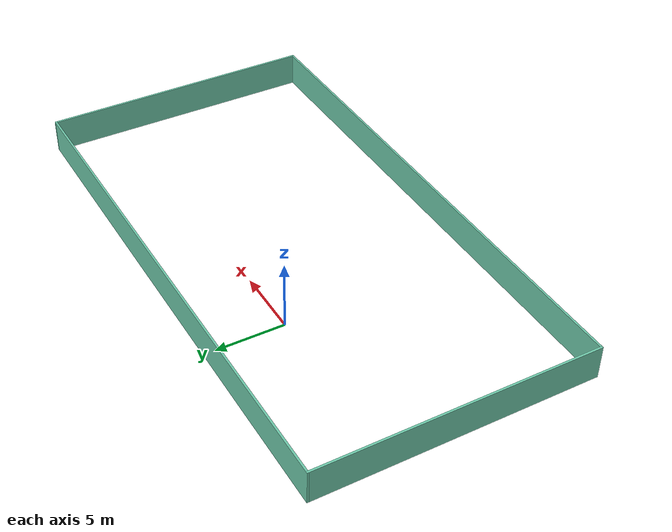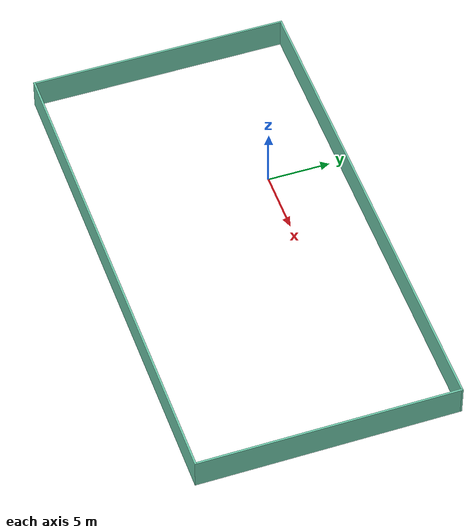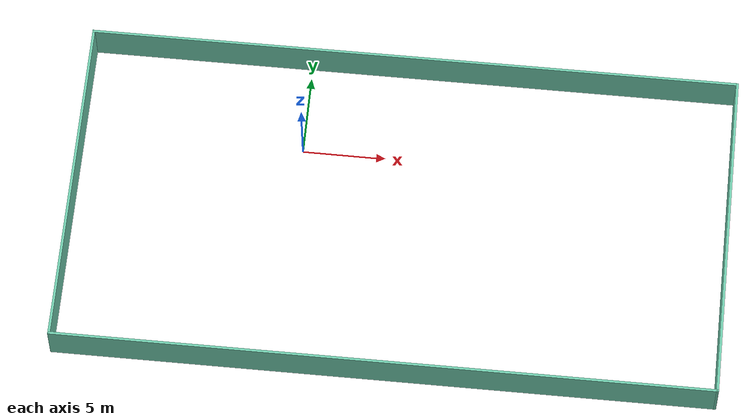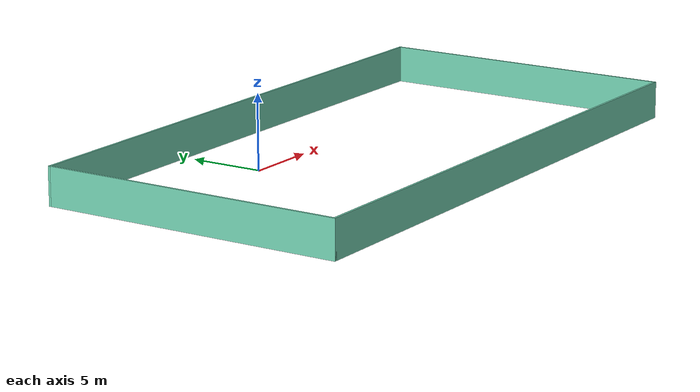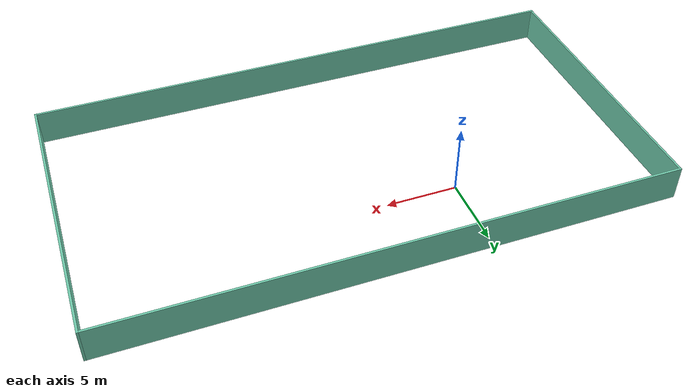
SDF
<?xml version='1.0'?>
<sdf version='1.7'>
  <model name='lab_walls'>
    <pose>6.21708 -4.4251 0 0 -0 0</pose>
    <link name='Wall_0'>
      <collision name='Wall_0_Collision'>
        <geometry>
          <box>
            <size>20.5 0.15 2.5</size>
          </box>
        </geometry>
        <pose>0 0 1.25 0 -0 0</pose>
      </collision>
      <visual name='Wall_0_Visual'>
        <pose>0 0 1.25 0 -0 0</pose>
        <geometry>
          <box>
            <size>20.5 0.15 2.5</size>
          </box>
        </geometry>
        <material>
          <script>
            <uri>file://media/materials/scripts/gazebo.material</uri>
            <name>Gazebo/Grey</name>
          </script>
          <ambient>0.435294 0.796078 0.67451 1</ambient>
        </material>
        <meta>
          <layer>0</layer>
        </meta>
      </visual>
      <pose>-19.55 0 0 0 -0 -1.5708</pose>
    </link>
    <link name='Wall_1'>
      <collision name='Wall_1_Collision'>
        <geometry>
          <box>
            <size>39.25 0.15 2.5</size>
          </box>
        </geometry>
        <pose>0 0 1.25 0 -0 0</pose>
      </collision>
      <visual name='Wall_1_Visual'>
        <pose>0 0 1.25 0 -0 0</pose>
        <geometry>
          <box>
            <size>39.25 0.15 2.5</size>
          </box>
        </geometry>
        <material>
          <script>
            <uri>file://media/materials/scripts/gazebo.material</uri>
            <name>Gazebo/Grey</name>
          </script>
          <ambient>0.435294 0.796078 0.67451 1</ambient>
        </material>
        <meta>
          <layer>0</layer>
        </meta>
      </visual>
      <pose>0 -10.175 0 0 -0 0</pose>
    </link>
    <link name='Wall_2'>
      <collision name='Wall_2_Collision'>
        <geometry>
          <box>
            <size>20.5 0.15 2.5</size>
          </box>
        </geometry>
        <pose>0 0 1.25 0 -0 0</pose>
      </collision>
      <visual name='Wall_2_Visual'>
        <pose>0 0 1.25 0 -0 0</pose>
        <geometry>
          <box>
            <size>20.5 0.15 2.5</size>
          </box>
        </geometry>
        <material>
          <script>
            <uri>file://media/materials/scripts/gazebo.material</uri>
            <name>Gazebo/Grey</name>
          </script>
          <ambient>0.435294 0.796078 0.67451 1</ambient>
        </material>
        <meta>
          <layer>0</layer>
        </meta>
      </visual>
      <pose>19.55 0 0 0 -0 1.5708</pose>
    </link>
    <link name='Wall_3'>
      <collision name='Wall_3_Collision'>
        <geometry>
          <box>
            <size>39.25 0.15 2.5</size>
          </box>
        </geometry>
        <pose>0 0 1.25 0 -0 0</pose>
      </collision>
      <visual name='Wall_3_Visual'>
        <pose>0 0 1.25 0 -0 0</pose>
        <geometry>
          <box>
            <size>39.25 0.15 2.5</size>
          </box>
        </geometry>
        <material>
          <script>
            <uri>file://media/materials/scripts/gazebo.material</uri>
            <name>Gazebo/Grey</name>
          </script>
          <ambient>0.435294 0.796078 0.67451 1</ambient>
        </material>
        <meta>
          <layer>0</layer>
        </meta>
      </visual>
      <pose>0 10.175 0 0 -0 3.14159</pose>
    </link>
    <static>1</static>
  </model>
</sdf>
